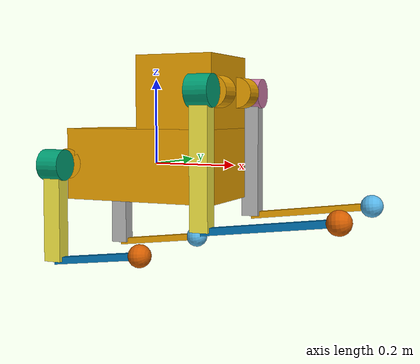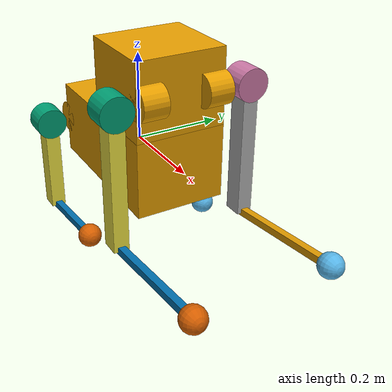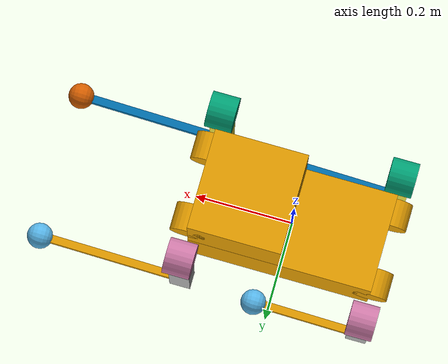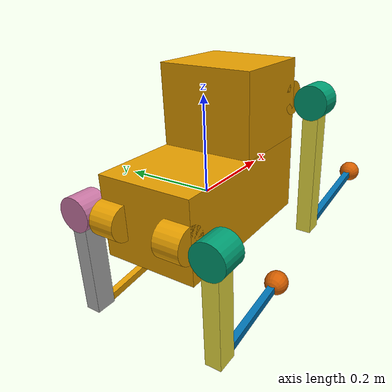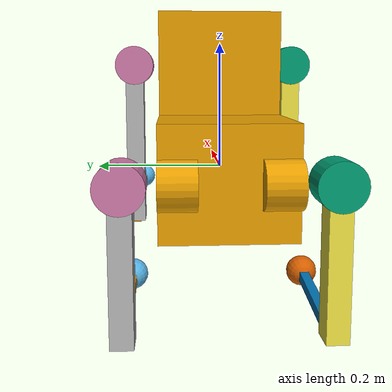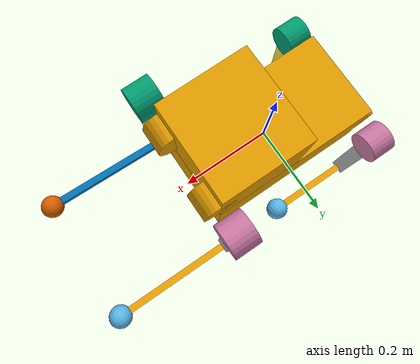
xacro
<?xml version="1.0"?>

<robot name="laikago" xmlns:xacro="http://www.ros.org/wiki/xacro">

    <xacro:arg name="DEBUG" default="false"/>

    <xacro:include filename="const.xacro"/>
    <xacro:include filename="materials.xacro"/>
    <xacro:include filename="leg_front.xacro"/>
    <xacro:include filename="leg_hind.xacro"/>

    <!-- Rollover Protection mode will add an additional stick on the top, use "true" or "false" to switch it. -->
    <xacro:property name="rolloverProtection" value="false"/>

    <!-- Debug mode will hung up the robot, use "true" or "false" to switch it. -->
    <xacro:if value="$(arg DEBUG)">
        <link name="world"/>
        <joint name="base_static_joint" type="fixed">
            <origin rpy="0 0 0" xyz="0 0 0"/>
            <parent link="world"/>
            <child link="base"/>
        </joint>
    </xacro:if>

    <link name="trunk">
        <visual>
            <origin rpy="0 0 0" xyz="0 0 ${trunk_offset_z}"/>
            <geometry>
                <box size="${trunk_length} ${trunk_width} ${trunk_height}"/>
            </geometry>
        </visual>
        <visual>
            <origin rpy="0 0 0" xyz="${trunk_length / 4} 0 ${trunk_offset_z + leg_offset_z_front}"/>
            <geometry>
                <box size="${trunk_length / 2} ${trunk_width} ${trunk_height}"/>
            </geometry>
        </visual>
        <visual>
            <origin rpy="${PI/2.0} 0 0" xyz="${leg_offset_x} ${leg_offset_y} ${leg_offset_z_front}"/>
            <geometry>
                <cylinder length="${hip_length}" radius="${hip_radius}"/>
            </geometry>
        </visual>
        <visual>
            <origin rpy="${PI/2.0} 0 0" xyz="${leg_offset_x} ${-leg_offset_y} ${leg_offset_z_front}"/>
            <geometry>
                <cylinder length="${hip_length}" radius="${hip_radius}"/>
            </geometry>
        </visual>
        <visual>
            <origin rpy="${PI/2.0} 0 0" xyz="${-leg_offset_x} ${leg_offset_y} ${leg_offset_z_hind}"/>
            <geometry>
                <cylinder length="${hip_length}" radius="${hip_radius}"/>
            </geometry>
        </visual>
        <visual>
            <origin rpy="${PI/2.0} 0 0" xyz="${-leg_offset_x} ${-leg_offset_y} ${leg_offset_z_hind}"/>
            <geometry>
                <cylinder length="${hip_length}" radius="${hip_radius}"/>
            </geometry>
        </visual>
        <collision>
            <origin rpy="0 0 0" xyz="0 0 ${trunk_offset_z}"/>
            <geometry>
                <box size="${trunk_length} ${trunk_width} ${trunk_height}"/>
            </geometry>
        </collision>
        <collision>
            <origin rpy="0 0 0" xyz="${trunk_length / 4} 0 ${trunk_offset_z + leg_offset_z_front}"/>
            <geometry>
                <box size="${trunk_length / 2} ${trunk_width} ${trunk_height}"/>
            </geometry>
        </collision>
        <inertial>
            <origin rpy="0 0 0" xyz="${trunk_com_x} ${trunk_com_y} ${trunk_com_z}"/>
            <mass value="${trunk_mass}"/>
            <inertia
                ixx="${trunk_ixx}" ixy="${trunk_ixy}" ixz="${trunk_ixz}"
                iyy="${trunk_iyy}" iyz="${trunk_iyz}"
                izz="${trunk_izz}"/>
        </inertial>
    </link>

    <xacro:if value="${(rolloverProtection == 'true')}">
        <joint name="stick_joint" type="fixed">
            <parent link="trunk"/>
            <child link="stick_link"/>
            <origin rpy="0 0 0" xyz="${0.18} 0 ${stick_length/2.0+0.08}"/>
        </joint>

        <link name="stick_link">
            <visual>
                <geometry>
                    <cylinder length="${stick_length}" radius="${stick_radius}"/>
                </geometry>
                <origin rpy="0 0 0" xyz="0 0 0"/>
                <material name="white"/>
            </visual>
            <collision>
                <geometry>
                    <cylinder length="${stick_length}" radius="${stick_radius}"/>
                </geometry>
                <origin rpy="0 0 0" xyz="0 0 0"/>
            </collision>
            <inertial>
                <mass value="${stick_mass}"/>
                <inertia
                    ixx="${stick_mass / 2.0 * (stick_radius*stick_radius)}" ixy="0.0" ixz="0.0"
                    iyy="${stick_mass / 12.0 * (3*stick_radius*stick_radius + stick_length*stick_length)}" iyz="0.0"
                    izz="${stick_mass / 12.0 * (3*stick_radius*stick_radius + stick_length*stick_length)}"/>
            </inertial>
        </link>
    </xacro:if>

    <joint name="imu_joint" type="fixed">
        <parent link="trunk"/>
        <child link="imu_link"/>
        <origin rpy="0 0 0" xyz="0 0 0"/>
    </joint>

    <link name="imu_link">
        <inertial>
            <mass value="0.001"/>
            <origin rpy="0 0 0" xyz="0 0 0"/>
            <inertia ixx="0.0001" ixy="0" ixz="0" iyy="0.000001" iyz="0" izz="0.0001"/>
        </inertial>
        <visual>
            <origin rpy="0 0 0" xyz="0 0 0"/>
            <geometry>
                <box size="0.001 0.001 0.001"/>
            </geometry>
            <material name="red"/>
        </visual>
        <collision>
            <origin rpy="0 0 0" xyz="0 0 0"/>
            <geometry>
                <box size=".001 .001 .001"/>
            </geometry>
        </collision>
    </link>
    <xacro:leg_front name="FR" mirror="-1" mirror_dae="False" front_hind="1" front_hind_dae="True">
        <origin rpy="0 0 0" xyz="${leg_offset_x} ${-leg_offset_y} ${leg_offset_z_front}"/>
    </xacro:leg_front>

    <xacro:leg_front name="FL" mirror="1" mirror_dae="True" front_hind="1" front_hind_dae="True">
        <origin rpy="0 0 0" xyz="${leg_offset_x} ${leg_offset_y} ${leg_offset_z_front}"/>
    </xacro:leg_front>

    <xacro:leg_hind name="RR" mirror="-1" mirror_dae="False" front_hind="-1" front_hind_dae="False">
        <origin rpy="0 0 0" xyz="${-leg_offset_x} ${-leg_offset_y} ${leg_offset_z_hind}"/>
    </xacro:leg_hind>

    <xacro:leg_hind name="RL" mirror="1" mirror_dae="True" front_hind="-1" front_hind_dae="False">
        <origin rpy="0 0 0" xyz="${-leg_offset_x} ${leg_offset_y} ${leg_offset_z_hind}"/>
    </xacro:leg_hind>

</robot>

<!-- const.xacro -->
<robot xmlns:xacro="http://www.ros.org/wiki/xacro">

    <!-- Constants for robot dimensions -->
    <xacro:property name="PI" value="3.1415926535897931"/>
    <xacro:property name="stick_mass" value="0.00001"/>

    <!-- simplified collision value -->
    <xacro:property name="trunk_width" value="0.200"/>
    <xacro:property name="trunk_length" value="0.375"/>
    <xacro:property name="trunk_height" value="0.168"/>
    <xacro:property name="hip_radius" value="0.036"/>
    <xacro:property name="hip_length" value="0.055"/>
    <xacro:property name="thigh_shoulder_radius" value="0.044"/>
    <xacro:property name="thigh_shoulder_length" value="0.08"/>
    <xacro:property name="thigh_width" value="0.034"/>
    <xacro:property name="thigh_height" value="0.043"/>
    <xacro:property name="calf_width" value="0.016"/>
    <xacro:property name="calf_height" value="0.016"/>
    <xacro:property name="foot_radius" value="0.0265"/>
    <xacro:property name="stick_radius" value="0.01"/>
    <xacro:property name="stick_length" value="0.2"/>

    <!-- kinematic value -->
    <xacro:property name="thigh_offset" value="0.0775"/>
    <xacro:property name="thigh_length_front" value="0.302"/>
    <xacro:property name="calf_length_front" value="0.302"/>
    <xacro:property name="thigh_length_hind" value="0.225"/>
    <xacro:property name="calf_length_hind" value="0.225"/>

    <!-- leg offset from trunk center value -->
    <xacro:property name="leg_offset_x" value="0.1875"/>
    <xacro:property name="leg_offset_y" value="0.0725"/>
    <xacro:property name="leg_offset_z_front" value="0.168"/>
    <xacro:property name="leg_offset_z_hind" value="0.0"/>
    <xacro:property name="trunk_offset_z" value="0.0"/>
    <xacro:property name="hip_offset" value="0.0775"/>

    <!-- joint limits -->
    <xacro:property name="damping" value="0"/>
    <xacro:property name="friction" value="0"/>
    <xacro:property name="hip_max" value="60"/>
    <xacro:property name="hip_min" value="-50"/>
    <xacro:property name="hip_velocity_max" value="27"/>
    <xacro:property name="hip_torque_max" value="100.954"/>
    <xacro:property name="thigh_max" value="225"/>
    <xacro:property name="thigh_min" value="-30"/>
    <xacro:property name="thigh_velocity_max" value="20.794"/>
    <xacro:property name="thigh_torque_max" value="100"/>
    <xacro:property name="calf_max" value="-35"/>
    <xacro:property name="calf_min" value="-159"/>
    <xacro:property name="calf_velocity_max" value="20.794"/>
    <xacro:property name="calf_torque_max" value="100"/>

    <!-- dynamics inertial value -->
    <!-- arm -->
    <xacro:property name="J1" value="0.5"/>
    <xacro:property name="L1" value="0.2"/>
    <xacro:property name="J2" value="0.55"/>
    <xacro:property name="L2" value="0.35"/>
    <xacro:property name="J3" value="0.5"/>
    <xacro:property name="L3" value="0.2"/>
    <xacro:property name="J4" value="0.55"/>
    <xacro:property name="L4" value="0.35"/>
    <xacro:property name="J5" value="0.35"/>
    <xacro:property name="L5" value="0.15"/>
    <xacro:property name="J6" value="0.35"/>
    <xacro:property name="hand" value="0.5"/>

    <!-- trunk -->
    <xacro:property name="trunk_mass" value="10.0"/>
    <xacro:property name="trunk_com_x" value="0.0"/>
    <xacro:property name="trunk_com_y" value="0.0"/>
    <xacro:property name="trunk_com_z" value="0.0"/>
    <xacro:property name="trunk_ixx" value="0.08"/>
    <xacro:property name="trunk_ixy" value="0.00"/>
    <xacro:property name="trunk_ixz" value="0.00"/>
    <xacro:property name="trunk_iyy" value="0.25"/>
    <xacro:property name="trunk_iyz" value="-0.00"/>
    <xacro:property name="trunk_izz" value="0.25"/>

    <!-- hip (left front) -->
    <xacro:property name="hip_mass" value="1.096"/>
    <xacro:property name="hip_com_x" value="-0.001568"/>
    <xacro:property name="hip_com_y" value="-0.008134"/>
    <xacro:property name="hip_com_z" value="0.000864"/>
    <xacro:property name="hip_ixx" value="0.000822113"/>
    <xacro:property name="hip_ixy" value="-0.000004982"/>
    <xacro:property name="hip_ixz" value="-0.00003672"/>
    <xacro:property name="hip_iyy" value="0.000983196"/>
    <xacro:property name="hip_iyz" value="0.000002811"/>
    <xacro:property name="hip_izz" value="0.000864753"/>

    <!-- thigh -->
    <xacro:property name="thigh_mass" value="1.528"/>
    <xacro:property name="thigh_com_x" value="-0.000482"/>
    <xacro:property name="thigh_com_y" value="0.02001"/>
    <xacro:property name="thigh_com_z_front" value="-0.10"/>
    <xacro:property name="thigh_com_z_hind" value="-0.031996"/>
    <xacro:property name="thigh_ixx" value="0.00991611"/>
    <xacro:property name="thigh_ixy" value="0.000010388"/>
    <xacro:property name="thigh_ixz" value="0.000250428"/>
    <xacro:property name="thigh_iyy" value="0.009280083"/>
    <xacro:property name="thigh_iyz" value="-0.00008511"/>
    <xacro:property name="thigh_izz" value="0.00178256"/>

    <!-- calf -->
    <xacro:property name="calf_mass" value="0.241"/>
    <xacro:property name="calf_com_x" value="-0.002196"/>
    <xacro:property name="calf_com_y" value="-0.000381"/>
    <xacro:property name="calf_com_z_front" value="-0.20"/>
    <xacro:property name="calf_com_z_hind" value="-0.12338"/>
    <xacro:property name="calf_ixx" value="0.006181961"/>
    <xacro:property name="calf_ixy" value="0.000000237"/>
    <xacro:property name="calf_ixz" value="-0.000002985"/>
    <xacro:property name="calf_iyy" value="0.006196546"/>
    <xacro:property name="calf_iyz" value="0.000005138"/>
    <xacro:property name="calf_izz" value="0.000034774"/>

    <!-- foot -->
    <xacro:property name="foot_mass" value="0.06"/>

</robot>

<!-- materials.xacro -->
<robot>

    <material name="black">
        <color rgba="0.0 0.0 0.0 1.0"/>
    </material>

    <material name="blue">
        <color rgba="0.0 0.0 0.8 1.0"/>
    </material>

    <material name="green">
        <color rgba="0.0 0.8 0.0 1.0"/>
    </material>

    <material name="grey">
        <color rgba="0.2 0.2 0.2 1.0"/>
    </material>

    <material name="silver">
        <color rgba="${233/255} ${233/255} ${216/255} 1.0"/>
    </material>

    <material name="orange">
        <color rgba="${255/255} ${108/255} ${10/255} 0.5"/>
    </material>

    <material name="brown">
        <color rgba="${222/255} ${207/255} ${195/255} 1.0"/>
    </material>

    <material name="red">
        <color rgba="0.8 0.0 0.0 1.0"/>
    </material>

    <material name="white">
        <color rgba="1.0 1.0 1.0 1.0"/>
    </material>

</robot>

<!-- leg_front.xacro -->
<robot xmlns:xacro="http://www.ros.org/wiki/xacro">

    <xacro:macro name="leg_front" params="name mirror mirror_dae front_hind front_hind_dae *origin">

        <joint name="${name}_hip_joint" type="revolute">
            <xacro:insert_block name="origin"/>
            <parent link="trunk"/>
            <child link="${name}_hip"/>
            <axis xyz="0 1 0"/>
            <dynamics damping="${damping}" friction="${friction}"/>
            <xacro:if value="${(mirror_dae == True)}">
                <limit effort="${hip_torque_max}" velocity="${hip_velocity_max}" lower="${hip_min*PI/180.0}" upper="${hip_max*PI/180.0}"/>
            </xacro:if>
            <xacro:if value="${(mirror_dae == False)}">
                <limit effort="${hip_torque_max}" velocity="${hip_velocity_max}" lower="${-hip_max*PI/180.0}" upper="${-hip_min*PI/180.0}"/>
            </xacro:if>
        </joint>

        <link name="${name}_hip">
            <visual>
                <origin rpy="0 ${PI/2.0} 0" xyz="0 ${hip_offset*mirror} 0"/>
                <geometry>
                    <cylinder length="${hip_length}" radius="${hip_radius}"/>
                </geometry>
            </visual>
            <collision>
                <origin rpy="0 ${PI/2.0} 0" xyz="0 ${hip_offset*mirror} 0"/>
                <geometry>
                    <cylinder length="${hip_length}" radius="${hip_radius}"/>
                </geometry>
            </collision>
            <inertial>
                <origin rpy="0 0 0" xyz="${hip_com_x*front_hind} ${hip_com_y*mirror} ${hip_com_z}"/>
                <mass value="${J2}"/>
                <inertia
                    ixx="${hip_ixx}" ixy="${hip_ixy*mirror*front_hind}" ixz="${hip_ixz*front_hind}"
                    iyy="${hip_iyy}" iyz="${hip_iyz*mirror}"
                    izz="${hip_izz}"/>
            </inertial>
        </link>

        <joint name="${name}_thigh_joint" type="revolute">
            <origin rpy="0 0 0" xyz="0 ${thigh_offset*mirror} 0"/>
            <parent link="${name}_hip"/>
            <child link="${name}_thigh"/>
            <axis xyz="1 0 0"/>
            <dynamics damping="${damping}" friction="${friction}"/>
            <limit effort="${thigh_torque_max}" velocity="${thigh_velocity_max}" lower="${thigh_min*PI/180.0}" upper="${thigh_max*PI/180.0}"/>
        </joint>

        <link name="${name}_thigh">
            <visual>
                <origin rpy="0 ${PI/2.0} 0" xyz="0 0 ${-thigh_length_front/2.0}"/>
                <geometry>
                    <box size="${thigh_length_front} ${thigh_width} ${thigh_height}"/>
                </geometry>
            </visual>
            <collision>
                <origin rpy="0 ${PI/2.0} 0" xyz="0 0 ${-thigh_length_front/2.0}"/>
                <geometry>
                    <box size="${thigh_length_front} ${thigh_width} ${thigh_height}"/>
                </geometry>
            </collision>
            <inertial>
                <origin rpy="0 0 0" xyz="${thigh_com_x} ${thigh_com_y*mirror} ${thigh_com_z_front}"/>
                <mass value="${L2+J3+L3+J4}"/>
                <inertia
                    ixx="${thigh_ixx}" ixy="${thigh_ixy*mirror}" ixz="${thigh_ixz}"
                    iyy="${thigh_iyy}" iyz="${thigh_iyz*mirror}"
                    izz="${thigh_izz}"/>
            </inertial>
        </link>

        <joint name="${name}_calf_joint" type="revolute">
            <origin rpy="0 0 0" xyz="0 0 ${-thigh_length_front}"/>
            <parent link="${name}_thigh"/>
            <child link="${name}_calf"/>
            <axis xyz="0 1 0"/>
            <dynamics damping="${damping}" friction="${friction}"/>
            <limit effort="${calf_torque_max}" velocity="${calf_velocity_max}" lower="${calf_min*PI/180.0}" upper="${calf_max*PI/180.0}"/>
        </joint>

        <link name="${name}_calf">
            <visual>
                <origin rpy="0 ${PI/2.0} 0" xyz="0 0 ${-calf_length_front/2.0}"/>
                <geometry>
                    <box size="${calf_length_front} ${calf_width} ${calf_height}"/>
                </geometry>
            </visual>
            <collision>
                <origin rpy="0 ${PI/2.0} 0" xyz="0 0 ${-calf_length_front/2.0}"/>
                <geometry>
                    <box size="${calf_length_front} ${calf_width} ${calf_height}"/>
                </geometry>
            </collision>
            <inertial>
                <origin rpy="0 0 0" xyz="${calf_com_x} ${calf_com_y} ${calf_com_z_front}"/>
                <mass value="${L4+J5+L5+J6+hand}"/>
                <inertia
                    ixx="${calf_ixx}" ixy="${calf_ixy}" ixz="${calf_ixz}"
                    iyy="${calf_iyy}" iyz="${calf_iyz}"
                    izz="${calf_izz}"/>
            </inertial>
        </link>

        <joint name="${name}_foot_fixed" type="fixed">
            <origin rpy="0 0 0" xyz="0 0 ${-(calf_length_front)}"/>
            <parent link="${name}_calf"/>
            <child link="${name}_foot"/>
        </joint>

        <link name="${name}_foot">
            <visual>
                <origin rpy="0 0 0" xyz="0 0 0"/>
                <geometry>
                    <sphere radius="${foot_radius}"/>
                </geometry>
            </visual>
            <collision>
                <origin rpy="0 0 0" xyz="0 0 0"/>
                <geometry>
                    <sphere radius="${foot_radius}"/>
                </geometry>
            </collision>
            <inertial>
                <mass value="${foot_mass}"/>
                <inertia
                    ixx="${(2*foot_mass)/5.0*(foot_radius*foot_radius)}" ixy="0.0" ixz="0.0"
                    iyy="${(2*foot_mass)/5.0*(foot_radius*foot_radius)}" iyz="0.0"
                    izz="${(2*foot_mass)/5.0*(foot_radius*foot_radius)}"/>
            </inertial>
        </link>

    </xacro:macro>
</robot>

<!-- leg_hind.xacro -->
<robot xmlns:xacro="http://www.ros.org/wiki/xacro">

    <xacro:macro name="leg_hind" params="name mirror mirror_dae front_hind front_hind_dae *origin">

        <joint name="${name}_hip_joint" type="revolute">
            <xacro:insert_block name="origin"/>
            <parent link="trunk"/>
            <child link="${name}_hip"/>
            <axis xyz="0 1 0"/>
            <dynamics damping="${damping}" friction="${friction}"/>
            <xacro:if value="${(mirror_dae == True)}">
                <limit effort="${hip_torque_max}" velocity="${hip_velocity_max}" lower="${hip_min*PI/180.0}" upper="${hip_max*PI/180.0}"/>
            </xacro:if>
            <xacro:if value="${(mirror_dae == False)}">
                <limit effort="${hip_torque_max}" velocity="${hip_velocity_max}" lower="${-hip_max*PI/180.0}" upper="${-hip_min*PI/180.0}"/>
            </xacro:if>
        </joint>

        <link name="${name}_hip">
            <visual>
                <origin rpy="0 ${PI/2.0} 0" xyz="0 ${hip_offset*mirror} 0"/>
                <geometry>
                    <cylinder length="${hip_length}" radius="${hip_radius}"/>
                </geometry>
            </visual>
            <collision>
                <origin rpy="0 ${PI/2.0} 0" xyz="0 ${hip_offset*mirror} 0"/>
                <geometry>
                    <cylinder length="${hip_length}" radius="${hip_radius}"/>
                </geometry>
            </collision>
            <inertial>
                <origin rpy="0 0 0" xyz="${hip_com_x*front_hind} ${hip_com_y*mirror} ${hip_com_z}"/>
                <mass value="${hip_mass}"/>
                <inertia
                    ixx="${hip_ixx}" ixy="${hip_ixy*mirror*front_hind}" ixz="${hip_ixz*front_hind}"
                    iyy="${hip_iyy}" iyz="${hip_iyz*mirror}"
                    izz="${hip_izz}"/>
            </inertial>
        </link>

        <joint name="${name}_thigh_joint" type="revolute">
            <origin rpy="0 0 0" xyz="0 ${thigh_offset*mirror} 0"/>
            <parent link="${name}_hip"/>
            <child link="${name}_thigh"/>
            <axis xyz="1 0 0"/>
            <dynamics damping="${damping}" friction="${friction}"/>
            <limit effort="${thigh_torque_max}" velocity="${thigh_velocity_max}" lower="${thigh_min*PI/180.0}" upper="${thigh_max*PI/180.0}"/>
        </joint>

        <link name="${name}_thigh">
            <visual>
                <origin rpy="0 ${PI/2.0} 0" xyz="0 0 ${-thigh_length_hind/2.0}"/>
                <geometry>
                    <box size="${thigh_length_hind} ${thigh_width} ${thigh_height}"/>
                </geometry>
            </visual>
            <collision>
                <origin rpy="0 ${PI/2.0} 0" xyz="0 0 ${-thigh_length_hind/2.0}"/>
                <geometry>
                    <box size="${thigh_length_hind} ${thigh_width} ${thigh_height}"/>
                </geometry>
            </collision>
            <inertial>
                <origin rpy="0 0 0" xyz="${thigh_com_x} ${thigh_com_y*mirror} ${thigh_com_z_hind}"/>
                <mass value="${thigh_mass}"/>
                <inertia
                    ixx="${thigh_ixx}" ixy="${thigh_ixy*mirror}" ixz="${thigh_ixz}"
                    iyy="${thigh_iyy}" iyz="${thigh_iyz*mirror}"
                    izz="${thigh_izz}"/>
            </inertial>
        </link>

        <joint name="${name}_calf_joint" type="revolute">
            <origin rpy="0 0 0" xyz="0 0 ${-thigh_length_hind}"/>
            <parent link="${name}_thigh"/>
            <child link="${name}_calf"/>
            <axis xyz="0 1 0"/>
            <dynamics damping="${damping}" friction="${friction}"/>
            <limit effort="${calf_torque_max}" velocity="${calf_velocity_max}" lower="${calf_min*PI/180.0}" upper="${calf_max*PI/180.0}"/>
        </joint>

        <link name="${name}_calf">
            <visual>
                <origin rpy="0 ${PI/2.0} 0" xyz="0 0 ${-calf_length_hind/2.0}"/>
                <geometry>
                    <box size="${calf_length_hind} ${calf_width} ${calf_height}"/>
                </geometry>
            </visual>
            <collision>
                <origin rpy="0 ${PI/2.0} 0" xyz="0 0 ${-calf_length_hind/2.0}"/>
                <geometry>
                    <box size="${calf_length_hind} ${calf_width} ${calf_height}"/>
                </geometry>
            </collision>
            <inertial>
                <origin rpy="0 0 0" xyz="${calf_com_x} ${calf_com_y} ${calf_com_z_hind}"/>
                <mass value="${calf_mass}"/>
                <inertia
                    ixx="${calf_ixx}" ixy="${calf_ixy}" ixz="${calf_ixz}"
                    iyy="${calf_iyy}" iyz="${calf_iyz}"
                    izz="${calf_izz}"/>
            </inertial>
        </link>

        <joint name="${name}_foot_fixed" type="fixed">
            <origin rpy="0 0 0" xyz="0 0 ${-(calf_length_hind)}"/>
            <parent link="${name}_calf"/>
            <child link="${name}_foot"/>
        </joint>

        <link name="${name}_foot">
            <visual>
                <origin rpy="0 0 0" xyz="0 0 0"/>
                <geometry>
                    <sphere radius="${foot_radius}"/>
                </geometry>
            </visual>
            <collision>
                <origin rpy="0 0 0" xyz="0 0 0"/>
                <geometry>
                    <sphere radius="${foot_radius}"/>
                </geometry>
            </collision>
            <inertial>
                <mass value="${foot_mass}"/>
                <inertia
                    ixx="${(2*foot_mass)/5.0*(foot_radius*foot_radius)}" ixy="0.0" ixz="0.0"
                    iyy="${(2*foot_mass)/5.0*(foot_radius*foot_radius)}" iyz="0.0"
                    izz="${(2*foot_mass)/5.0*(foot_radius*foot_radius)}"/>
            </inertial>
        </link>

    </xacro:macro>
</robot>
